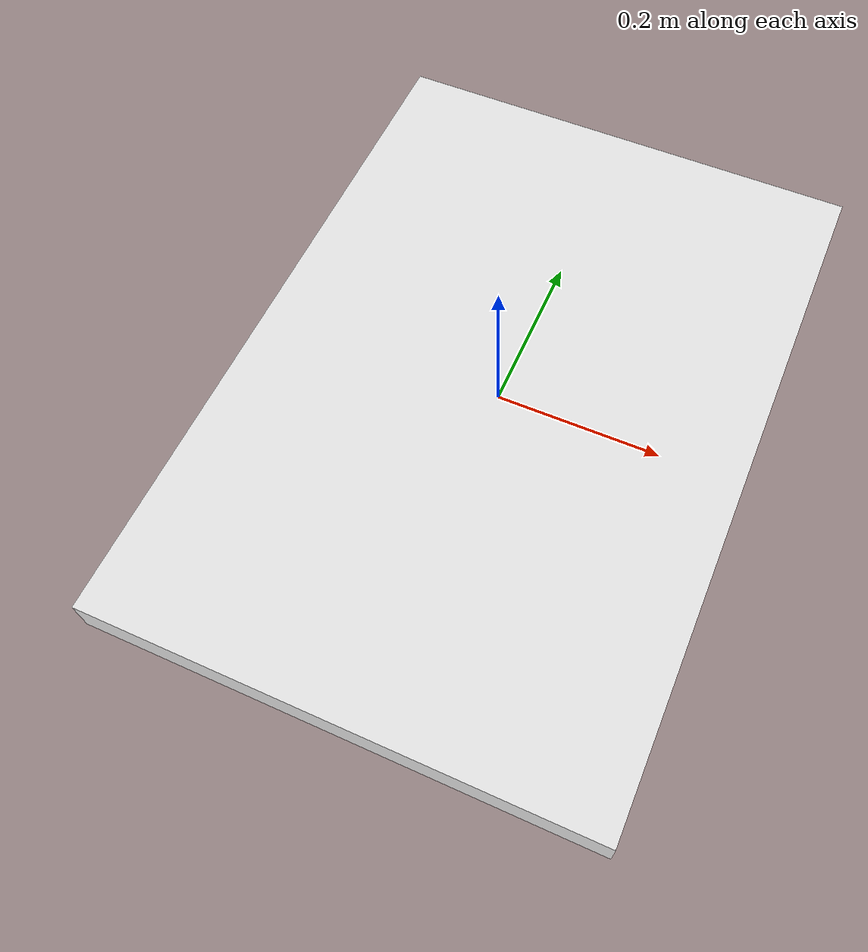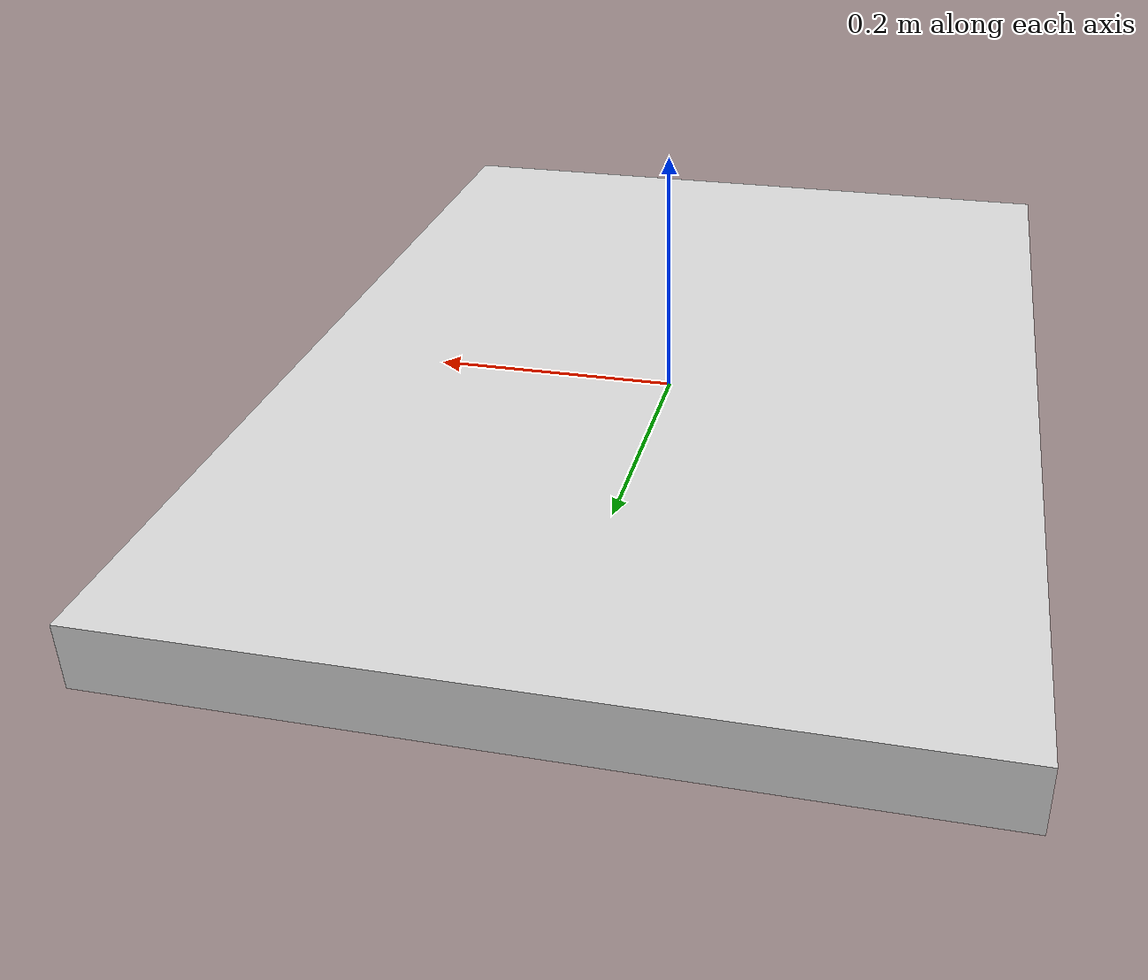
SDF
<?xml version="1.0"?>
<sdf version="1.6">
  <model name="rwc2015/bookcase/shelf">
    <link name="1_link">
      <collision name="1_col">
        <geometry>
          <box>
            <size>0.6 0.845 0.05</size>
          </box>
        </geometry>
      </collision>
      <visual name="1_vis">
        <geometry>
          <box>
            <size>0.6 0.845 0.05</size>
          </box>
        </geometry>
        <material>
          <ambient>0.9 0.9 0.9 1</ambient>
        </material>
      </visual>
      <pose>0.0 0.0 0.0 0 0 0</pose>
    </link>
    <link name="in_front_of">
      <virtual_volume name="in_front_of_vv">
        <geometry>
          <box>
            <size>0.15 0.4 1.76</size>
          </box>
        </geometry>
        <pose>0.91 0.0 0.88 0 0 0</pose>
      </virtual_volume>
    </link>
    <link name="in">
      <virtual_volume name="in_vv">
        <geometry>
          <box>
            <size>0.6 1.6 0.2</size>
          </box>
        </geometry>
        <pose>0.0 0.0 0.1 0 0 0</pose>
      </virtual_volume>
    </link>
    <static>true</static>
  </model>
</sdf>
